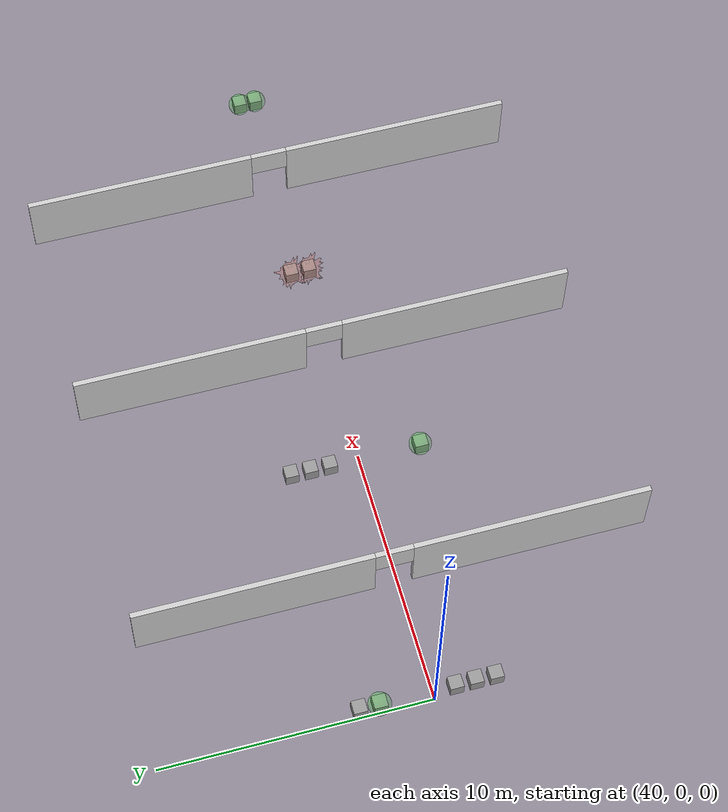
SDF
<sdf version="1.6">
 <world name="default">
  <model name="trap_cont_4_a_1">
   <static>0</static>
   <static>0</static>
   <link name="normal_cue_1::vis_cue_normal">
    <inertial>
     <mass>1</mass>
     <inertia>
      <ixx>0.166667</ixx>
      <ixy>0</ixy>
      <ixz>0</ixz>
      <iyy>0.166667</iyy>
      <iyz>0</iyz>
      <izz>0.166667</izz>
     </inertia>
    </inertial>
    <collision name="collision"><geometry><box><size>0.5 0.5 0.5</size></box></geometry></collision>
    <visual name="box_visual">
     <geometry><box><size>0.5 0.5 0.5</size></box></geometry>
     <material>
      <script><name>Gazebo/Grey</name><uri>file://media/materials/scripts/gazebo.material</uri></script>
     </material>
    </visual>
    <pose>0 -2.48 0.25 0 -0 0</pose>
   </link>
   <static>0</static>
   <link name="normal_cue_2::vis_cue_normal">
    <inertial>
     <mass>1</mass>
     <inertia>
      <ixx>0.166667</ixx>
      <ixy>0</ixy>
      <ixz>0</ixz>
      <iyy>0.166667</iyy>
      <iyz>0</iyz>
      <izz>0.166667</izz>
     </inertia>
    </inertial>
    <collision name="collision"><geometry><box><size>0.5 0.5 0.5</size></box></geometry></collision>
    <visual name="box_visual">
     <geometry><box><size>0.5 0.5 0.5</size></box></geometry>
     <material>
      <script><name>Gazebo/Grey</name><uri>file://media/materials/scripts/gazebo.material</uri></script>
     </material>
    </visual>
    <pose>0 -1.745 0.25 0 -0 0</pose>
   </link>
   <static>0</static>
   <link name="normal_cue_3::vis_cue_normal">
    <inertial>
     <mass>1</mass>
     <inertia>
      <ixx>0.166667</ixx>
      <ixy>0</ixy>
      <ixz>0</ixz>
      <iyy>0.166667</iyy>
      <iyz>0</iyz>
      <izz>0.166667</izz>
     </inertia>
    </inertial>
    <collision name="collision"><geometry><box><size>0.5 0.5 0.5</size></box></geometry></collision>
    <visual name="box_visual">
     <geometry><box><size>0.5 0.5 0.5</size></box></geometry>
     <material>
      <script><name>Gazebo/Grey</name><uri>file://media/materials/scripts/gazebo.material</uri></script>
     </material>
    </visual>
    <pose>0 -1.01 0.25 0 -0 0</pose>
   </link>
   <static>0</static>
   <link name="attracting_cue_0::vis_cue_attract">
    <inertial>
     <mass>1</mass>
     <inertia>
      <ixx>0.166667</ixx>
      <ixy>0</ixy>
      <ixz>0</ixz>
      <iyy>0.166667</iyy>
      <iyz>0</iyz>
      <izz>0.166667</izz>
     </inertia>
    </inertial>
    <collision name="collision"><geometry><box><size>0.5 0.5 0.5</size></box></geometry></collision>
    <visual name="box_visual">
     <geometry><box><size>0.5 0.5 0.5</size></box></geometry>
     <material>
      <script><name>Gazebo/Grey</name><uri>file://media/materials/scripts/gazebo.material</uri></script>
     </material>
    </visual>
    <visual name="cue_visual">
     <geometry>
      <mesh><uri>model://vis_cue_attract/meshes/sphere.stl</uri><scale>0.85 0.85 0.85</scale></mesh>
     </geometry>
     <material>
      <ambient>0 1 0 0.15</ambient>
      <diffuse>0 1 0 0.15</diffuse>
      <specular>0 1 0 0.15</specular>
      <emissive>0 0 0 0</emissive>
     </material>
    </visual>
    <pose>0 1.74 0.25 0 -0 0</pose>
   </link>
   <static>0</static>
   <link name="normal_cue_4::vis_cue_normal">
    <inertial>
     <mass>1</mass>
     <inertia>
      <ixx>0.166667</ixx>
      <ixy>0</ixy>
      <ixz>0</ixz>
      <iyy>0.166667</iyy>
      <iyz>0</iyz>
      <izz>0.166667</izz>
     </inertia>
    </inertial>
    <collision name="collision"><geometry><box><size>0.5 0.5 0.5</size></box></geometry></collision>
    <visual name="box_visual">
     <geometry><box><size>0.5 0.5 0.5</size></box></geometry>
     <material>
      <script><name>Gazebo/Grey</name><uri>file://media/materials/scripts/gazebo.material</uri></script>
     </material>
    </visual>
    <pose>0 2.48 0.25 0 -0 0</pose>
   </link>
   <pose>40.2553 0.202158 -1.9e-05 -6e-06 6e-06 0</pose>
  </model>
  <model name="trap_cont_1_attr_m">
   <static>0</static>
   <static>0</static>
   <link name="attracting_cue_0::vis_cue_attract">
    <inertial>
     <mass>1</mass>
     <inertia>
      <ixx>0.166667</ixx>
      <ixy>0</ixy>
      <ixz>0</ixz>
      <iyy>0.166667</iyy>
      <iyz>0</iyz>
      <izz>0.166667</izz>
     </inertia>
    </inertial>
    <collision name="collision"><geometry><box><size>0.5 0.5 0.5</size></box></geometry></collision>
    <visual name="box_visual">
     <geometry><box><size>0.5 0.5 0.5</size></box></geometry>
     <material>
      <script><name>Gazebo/Grey</name><uri>file://media/materials/scripts/gazebo.material</uri></script>
     </material>
    </visual>
    <visual name="cue_visual">
     <geometry>
      <mesh><uri>model://vis_cue_attract/meshes/sphere.stl</uri><scale>0.85 0.85 0.85</scale></mesh>
     </geometry>
     <material>
      <ambient>0 1 0 0.15</ambient>
      <diffuse>0 1 0 0.15</diffuse>
      <specular>0 1 0 0.15</specular>
      <emissive>0 0 0 0</emissive>
     </material>
    </visual>
    <pose>0 -2.48 0.25 0 -0 0</pose>
   </link>
   <static>0</static>
   <link name="normal_cue_0::vis_cue_normal">
    <inertial>
     <mass>1</mass>
     <inertia>
      <ixx>0.166667</ixx>
      <ixy>0</ixy>
      <ixz>0</ixz>
      <iyy>0.166667</iyy>
      <iyz>0</iyz>
      <izz>0.166667</izz>
     </inertia>
    </inertial>
    <collision name="collision"><geometry><box><size>0.5 0.5 0.5</size></box></geometry></collision>
    <visual name="box_visual">
     <geometry><box><size>0.5 0.5 0.5</size></box></geometry>
     <material>
      <script><name>Gazebo/Grey</name><uri>file://media/materials/scripts/gazebo.material</uri></script>
     </material>
    </visual>
    <pose>0 1.01 0.25 0 -0 0</pose>
   </link>
   <static>0</static>
   <link name="normal_cue_1::vis_cue_normal">
    <inertial>
     <mass>1</mass>
     <inertia>
      <ixx>0.166667</ixx>
      <ixy>0</ixy>
      <ixz>0</ixz>
      <iyy>0.166667</iyy>
      <iyz>0</iyz>
      <izz>0.166667</izz>
     </inertia>
    </inertial>
    <collision name="collision"><geometry><box><size>0.5 0.5 0.5</size></box></geometry></collision>
    <visual name="box_visual">
     <geometry><box><size>0.5 0.5 0.5</size></box></geometry>
     <material>
      <script><name>Gazebo/Grey</name><uri>file://media/materials/scripts/gazebo.material</uri></script>
     </material>
    </visual>
    <pose>0 1.745 0.25 0 -0 0</pose>
   </link>
   <static>0</static>
   <link name="normal_cue_2::vis_cue_normal">
    <inertial>
     <mass>1</mass>
     <inertia>
      <ixx>0.166667</ixx>
      <ixy>0</ixy>
      <ixz>0</ixz>
      <iyy>0.166667</iyy>
      <iyz>0</iyz>
      <izz>0.166667</izz>
     </inertia>
    </inertial>
    <collision name="collision"><geometry><box><size>0.5 0.5 0.5</size></box></geometry></collision>
    <visual name="box_visual">
     <geometry><box><size>0.5 0.5 0.5</size></box></geometry>
     <material>
      <script><name>Gazebo/Grey</name><uri>file://media/materials/scripts/gazebo.material</uri></script>
     </material>
    </visual>
    <pose>0 2.48 0.25 0 -0 0</pose>
   </link>
   <pose>49.8096 0.145048 -1.9e-05 -6e-06 6e-06 0</pose>
  </model>
  <model name="vis_cue_repel">
   <static>0</static>
   <pose>58.3645 0.37962 0.249997 -6e-06 6e-06 0</pose>
   <link name="vis_cue_repel">
    <inertial>
     <mass>1</mass>
     <inertia>
      <ixx>0.166667</ixx>
      <ixy>0</ixy>
      <ixz>0</ixz>
      <iyy>0.166667</iyy>
      <iyz>0</iyz>
      <izz>0.166667</izz>
     </inertia>
    </inertial>
    <collision name="collision"><geometry><box><size>0.5 0.5 0.5</size></box></geometry></collision>
    <visual name="box_visual">
     <geometry><box><size>0.5 0.5 0.5</size></box></geometry>
     <material>
      <script><name>Gazebo/Grey</name><uri>file://media/materials/scripts/gazebo.material</uri></script>
     </material>
    </visual>
    <visual name="cue_visual">
     <geometry><mesh><uri>model://repelling_cue_2.dae</uri><scale>0.85 0.85 0.85</scale></mesh></geometry>
     <material>
      <ambient>1 0.3 0.2 0.2</ambient>
      <diffuse>1 0.3 0.2 0.2</diffuse>
      <specular>1 0.3 0.2 0.5</specular>
      <emissive>0.5 0 0 0.1</emissive>
     </material>
    </visual>
   </link>
  </model>
  <model name="vis_cue_repel_0">
   <static>0</static>
   <pose>58.3744 -0.325347 0.249994 7e-06 -7e-06 0</pose>
   <link name="vis_cue_repel">
    <inertial>
     <mass>1</mass>
     <inertia>
      <ixx>0.166667</ixx>
      <ixy>0</ixy>
      <ixz>0</ixz>
      <iyy>0.166667</iyy>
      <iyz>0</iyz>
      <izz>0.166667</izz>
     </inertia>
    </inertial>
    <collision name="collision"><geometry><box><size>0.5 0.5 0.5</size></box></geometry></collision>
    <visual name="box_visual">
     <geometry><box><size>0.5 0.5 0.5</size></box></geometry>
     <material>
      <script><name>Gazebo/Grey</name><uri>file://media/materials/scripts/gazebo.material</uri></script>
     </material>
    </visual>
    <visual name="cue_visual">
     <geometry><mesh><uri>model://repelling_cue_2.dae</uri><scale>0.85 0.85 0.85</scale></mesh></geometry>
     <material>
      <ambient>1 0.3 0.2 0.2</ambient>
      <diffuse>1 0.3 0.2 0.2</diffuse>
      <specular>1 0.3 0.2 0.5</specular>
      <emissive>0.5 0 0 0.1</emissive>
     </material>
    </visual>
   </link>
  </model>
  <model name="vis_cue_attract">
   <static>0</static>
   <pose>66.8227 0.329052 0.249992 -3e-06 3e-06 0</pose>
   <link name="vis_cue_attract">
    <inertial>
     <mass>1</mass>
     <inertia>
      <ixx>0.166667</ixx>
      <ixy>0</ixy>
      <ixz>0</ixz>
      <iyy>0.166667</iyy>
      <iyz>0</iyz>
      <izz>0.166667</izz>
     </inertia>
    </inertial>
    <collision name="collision"><geometry><box><size>0.5 0.5 0.5</size></box></geometry></collision>
    <visual name="box_visual">
     <geometry><box><size>0.5 0.5 0.5</size></box></geometry>
     <material>
      <script><name>Gazebo/Grey</name><uri>file://media/materials/scripts/gazebo.material</uri></script>
     </material>
    </visual>
    <visual name="cue_visual">
     <geometry>
      <mesh><uri>model://vis_cue_attract/meshes/sphere.stl</uri><scale>0.85 0.85 0.85</scale></mesh>
     </geometry>
     <material>
      <ambient>0 1 0 0.15</ambient>
      <diffuse>0 1 0 0.15</diffuse>
      <specular>0 1 0 0.15</specular>
      <emissive>0 0 0 0</emissive>
     </material>
    </visual>
   </link>
  </model>
  <model name="vis_cue_attract_0">
   <static>0</static>
   <pose>66.8251 -0.305058 0.249994 7e-06 -7e-06 0</pose>
   <link name="vis_cue_attract">
    <inertial>
     <mass>1</mass>
     <inertia>
      <ixx>0.166667</ixx>
      <ixy>0</ixy>
      <ixz>0</ixz>
      <iyy>0.166667</iyy>
      <iyz>0</iyz>
      <izz>0.166667</izz>
     </inertia>
    </inertial>
    <collision name="collision"><geometry><box><size>0.5 0.5 0.5</size></box></geometry></collision>
    <visual name="box_visual">
     <geometry><box><size>0.5 0.5 0.5</size></box></geometry>
     <material>
      <script><name>Gazebo/Grey</name><uri>file://media/materials/scripts/gazebo.material</uri></script>
     </material>
    </visual>
    <visual name="cue_visual">
     <geometry>
      <mesh><uri>model://vis_cue_attract/meshes/sphere.stl</uri><scale>0.85 0.85 0.85</scale></mesh>
     </geometry>
     <material>
      <ambient>0 1 0 0.15</ambient>
      <diffuse>0 1 0 0.15</diffuse>
      <specular>0 1 0 0.15</specular>
      <emissive>0 0 0 0</emissive>
     </material>
    </visual>
   </link>
  </model>
  <model name="study_track_gate_block_2">
   <static>1</static>
   <link name="gate_l">
    <pose>0 -5.1 1.25 0 -0 0</pose>
    <collision name="collision"><geometry><box><size>0.2 8.8 2.5</size></box></geometry></collision>
    <visual name="visual">
     <geometry><box><size>0.2 8.8 2.5</size></box></geometry>
     <material>
      <ambient>0.7 0.7 0.7 1</ambient>
      <diffuse>0.8 0.8 0.8 1</diffuse>
      <specular>0.1 0.1 0.1 1</specular>
      <emissive>0 0 0 0</emissive>
     </material>
    </visual>
   </link>
   <link name="gate_r">
    <pose>0 5.1 1.25 0 -0 0</pose>
    <collision name="collision"><geometry><box><size>0.2 8.8 2.5</size></box></geometry></collision>
    <visual name="visual">
     <geometry><box><size>0.2 8.8 2.5</size></box></geometry>
     <material>
      <ambient>0.7 0.7 0.7 1</ambient>
      <diffuse>0.8 0.8 0.8 1</diffuse>
      <specular>0.1 0.1 0.1 1</specular>
      <emissive>0 0 0 0</emissive>
     </material>
    </visual>
   </link>
   <link name="gate_m">
    <pose>0 0 2 0 -0 0</pose>
    <collision name="collision"><geometry><box><size>0.2 1.4 1</size></box></geometry></collision>
    <visual name="visual">
     <geometry><box><size>0.2 1.4 1</size></box></geometry>
     <material>
      <ambient>0.7 0.7 0.7 1</ambient>
      <diffuse>0.8 0.8 0.8 1</diffuse>
      <specular>0.1 0.1 0.1 1</specular>
      <emissive>0 0 0 0</emissive>
     </material>
    </visual>
   </link>
   <pose>44.7644 0.167275 0 0 -0 0</pose>
  </model>
  <model name="study_track_gate_block_3">
   <static>1</static>
   <link name="gate_l">
    <pose>0 -5.1 1.25 0 -0 0</pose>
    <collision name="collision"><geometry><box><size>0.2 8.8 2.5</size></box></geometry></collision>
    <visual name="visual">
     <geometry><box><size>0.2 8.8 2.5</size></box></geometry>
     <material>
      <ambient>0.7 0.7 0.7 1</ambient>
      <diffuse>0.8 0.8 0.8 1</diffuse>
      <specular>0.1 0.1 0.1 1</specular>
      <emissive>0 0 0 0</emissive>
     </material>
    </visual>
   </link>
   <link name="gate_r">
    <pose>0 5.1 1.25 0 -0 0</pose>
    <collision name="collision"><geometry><box><size>0.2 8.8 2.5</size></box></geometry></collision>
    <visual name="visual">
     <geometry><box><size>0.2 8.8 2.5</size></box></geometry>
     <material>
      <ambient>0.7 0.7 0.7 1</ambient>
      <diffuse>0.8 0.8 0.8 1</diffuse>
      <specular>0.1 0.1 0.1 1</specular>
      <emissive>0 0 0 0</emissive>
     </material>
    </visual>
   </link>
   <link name="gate_m">
    <pose>0 0 2 0 -0 0</pose>
    <collision name="collision"><geometry><box><size>0.2 1.4 1</size></box></geometry></collision>
    <visual name="visual">
     <geometry><box><size>0.2 1.4 1</size></box></geometry>
     <material>
      <ambient>0.7 0.7 0.7 1</ambient>
      <diffuse>0.8 0.8 0.8 1</diffuse>
      <specular>0.1 0.1 0.1 1</specular>
      <emissive>0 0 0 0</emissive>
     </material>
    </visual>
   </link>
   <pose>54.3245 0.147789 0 0 -0 0</pose>
  </model>
  <model name="study_track_gate_block_4">
   <static>1</static>
   <link name="gate_l">
    <pose>0 -5.1 1.25 0 -0 0</pose>
    <collision name="collision"><geometry><box><size>0.2 8.8 2.5</size></box></geometry></collision>
    <visual name="visual">
     <geometry><box><size>0.2 8.8 2.5</size></box></geometry>
     <material>
      <ambient>0.7 0.7 0.7 1</ambient>
      <diffuse>0.8 0.8 0.8 1</diffuse>
      <specular>0.1 0.1 0.1 1</specular>
      <emissive>0 0 0 0</emissive>
     </material>
    </visual>
   </link>
   <link name="gate_r">
    <pose>0 5.1 1.25 0 -0 0</pose>
    <collision name="collision"><geometry><box><size>0.2 8.8 2.5</size></box></geometry></collision>
    <visual name="visual">
     <geometry><box><size>0.2 8.8 2.5</size></box></geometry>
     <material>
      <ambient>0.7 0.7 0.7 1</ambient>
      <diffuse>0.8 0.8 0.8 1</diffuse>
      <specular>0.1 0.1 0.1 1</specular>
      <emissive>0 0 0 0</emissive>
     </material>
    </visual>
   </link>
   <link name="gate_m">
    <pose>0 0 2 0 -0 0</pose>
    <collision name="collision"><geometry><box><size>0.2 1.4 1</size></box></geometry></collision>
    <visual name="visual">
     <geometry><box><size>0.2 1.4 1</size></box></geometry>
     <material>
      <ambient>0.7 0.7 0.7 1</ambient>
      <diffuse>0.8 0.8 0.8 1</diffuse>
      <specular>0.1 0.1 0.1 1</specular>
      <emissive>0 0 0 0</emissive>
     </material>
    </visual>
   </link>
   <pose>62.5463 0.163149 0 0 -0 0</pose>
  </model>
 </world>
</sdf>
